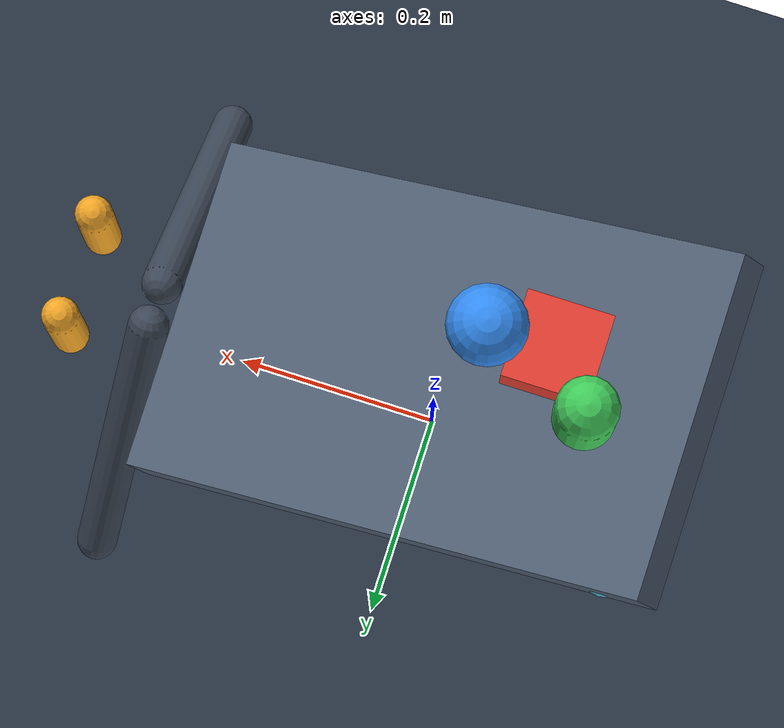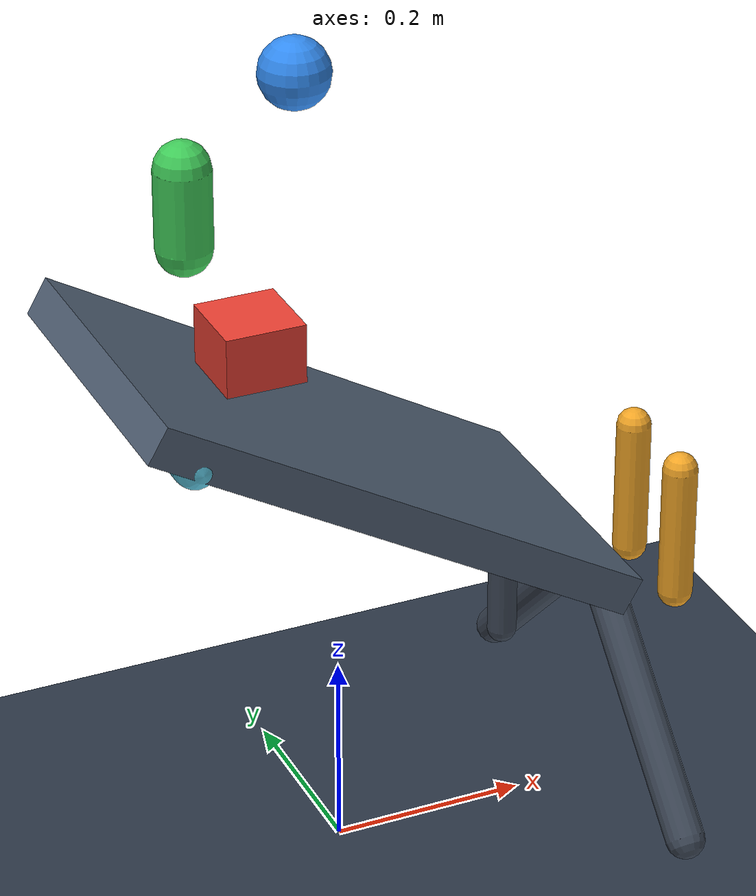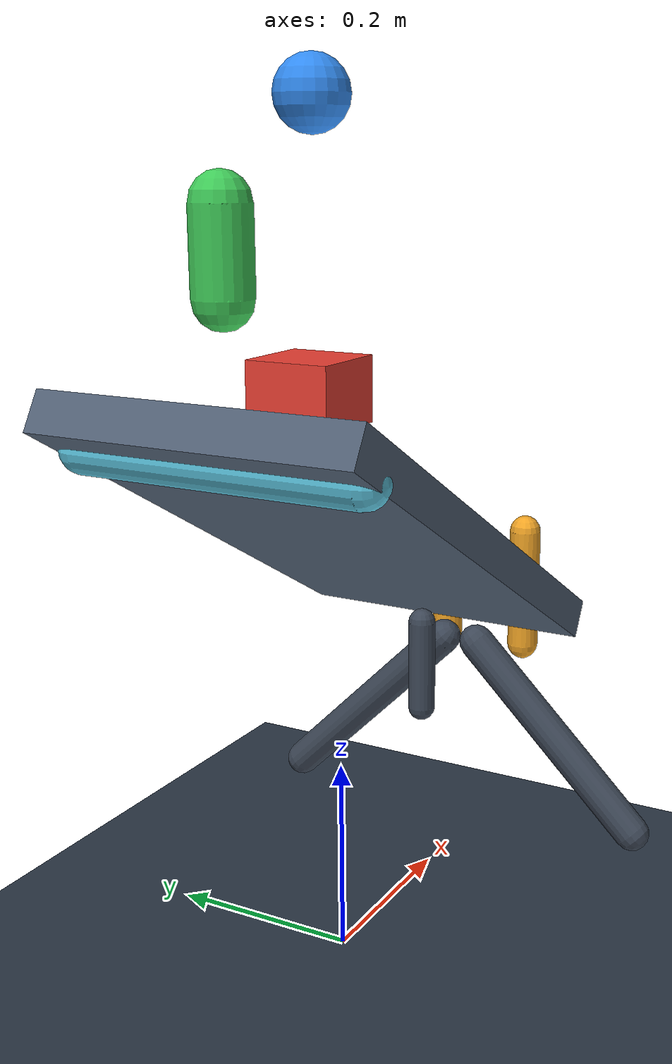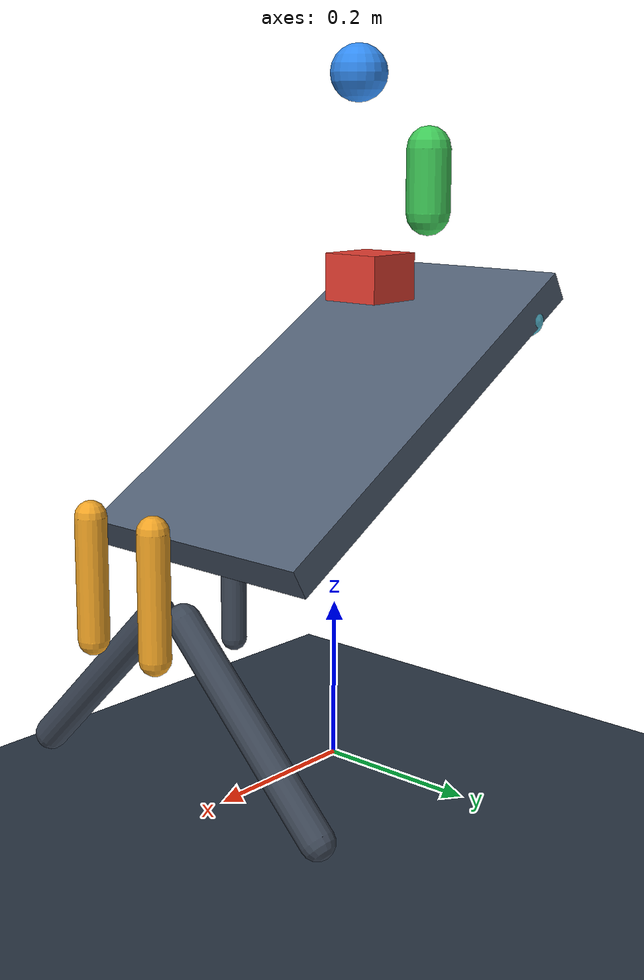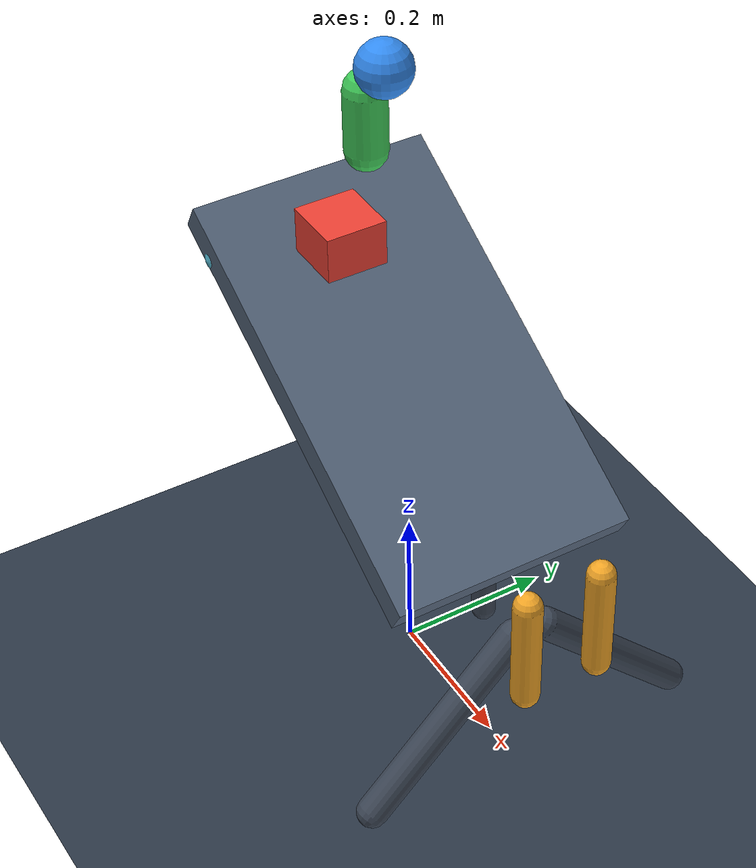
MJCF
<mujoco model="clockwork_parcel_sorter">
  <compiler angle="radian" inertiafromgeom="true"/>
  <option timestep="0.002" gravity="0 0 -9.81" integrator="Euler" iterations="800" tolerance="1e-5" density="1.2" viscosity="0.00002">
    <flag contact="enable" equality="enable" limit="enable" frictionloss="enable"/>
  </option>

  <asset>
    <texture name="checker" type="2d" builtin="checker" width="512" height="512"
      rgb1="0.12 0.15 0.20" rgb2="0.22 0.28 0.35"/>
    <material name="floor_mat" texture="checker" texrepeat="8 8" reflectance="0.1"/>
    <material name="ramp_mat" rgba="0.32 0.38 0.46 1" specular="0.6" shininess="0.4"/>
    <material name="chute_mat" rgba="0.24 0.28 0.34 1" specular="0.5" shininess="0.3"/>
    <material name="diverter_mat" rgba="0.95 0.65 0.15 1" specular="0.8" shininess="0.6"/>
    <material name="roller_mat" rgba="0.35 0.75 0.85 1" specular="0.8" shininess="0.7"/>
    <material name="box_parcel_mat" rgba="0.92 0.25 0.20 1" specular="0.8" shininess="0.8"/>
    <material name="cap_parcel_mat" rgba="0.25 0.80 0.35 1" specular="0.8" shininess="0.8"/>
    <material name="sph_parcel_mat" rgba="0.20 0.55 0.95 1" specular="0.9" shininess="0.9"/>
  </asset>

  <default>
    <geom condim="3" friction="0.35 0.05 0.05" solref="0.015 1.0" solimp="0.9 0.95 0.001 0.5 2"/>
  </default>

  <worldbody>
    <light directional="true" pos="0 -2 5" dir="0 0.3 -1" diffuse="0.9 0.9 0.9" specular="0.3 0.3 0.3"/>

    <!-- Foundation Table / Catch Floor -->
    <geom name="floor" type="plane" size="3 3 0.1" pos="0 0 -0.1" material="floor_mat" contype="0" conaffinity="0"/>

    <!-- Incline Solid Box Feed Ramp -->
    <geom name="ramp" type="box" size="0.28 0.16 0.02" pos="0 0 0.45"
      quat="0.9659258 0 0.258819 0" material="ramp_mat" contype="0" conaffinity="0"/>

    <!-- Capsule Guide Rollers at the head of the ramp -->
    <geom name="roller" type="capsule" size="0.022 0.14" pos="-0.20 0 0.55"
      quat="0.7071068 0.7071068 0 0" material="roller_mat" contype="0" conaffinity="0"/>

    <!-- Actuated Hinged Diverter Gate (Swinging guide arm) -->
    <body name="diverter1" pos="0.28 -0.05 0.30">
      <joint name="diverter1_hinge" type="hinge" axis="0 0 1" range="-0.65 0.65" limited="true" frictionloss="0.02" damping="0.05"/>
      <geom name="diverter1_flap" type="capsule" size="0.018 0.07" pos="0.07 0 0" material="diverter_mat" mass="0.2" contype="0" conaffinity="0"/>
    </body>

    <!-- Linked Follower Guide Flap (Symmetrically linked by joint equality) -->
    <body name="diverter2" pos="0.28 0.05 0.30">
      <joint name="diverter2_hinge" type="hinge" axis="0 0 1" range="-0.65 0.65" limited="true" frictionloss="0.02" damping="0.05"/>
      <geom name="diverter2_flap" type="capsule" size="0.018 0.07" pos="0.07 0 0" material="diverter_mat" mass="0.2" contype="0" conaffinity="0"/>
    </body>

    <!-- Diverter Damper lever -->
    <body name="damper_lever" pos="0.18 0 0.25">
      <joint name="damper_hinge" type="hinge" axis="0 0 1" range="-0.5 0.5" limited="true" stiffness="15.0" damping="0.2" springref="0.0"/>
      <geom name="damper_body" type="capsule" size="0.015 0.05" pos="0 0 0" material="chute_mat" contype="0" conaffinity="0" mass="0.1"/>
    </body>

    <!-- Left Chute / Guide Rail (Negative Y) -->
    <geom name="chute_left" type="capsule" size="0.02 0.14" pos="0.28 -0.12 0.15"
      quat="0.9238795 -0.3826834 0 0" material="chute_mat" contype="0" conaffinity="0"/>

    <!-- Right Chute / Guide Rail (Positive Y) -->
    <geom name="chute_right" type="capsule" size="0.02 0.14" pos="0.28 0.12 0.15"
      quat="0.9238795 0.3826834 0 0" material="chute_mat" contype="0" conaffinity="0"/>

    <!-- Mixed Parcel Feed -->
    <!-- Parcel 1: Red Box Parcel -->
    <body name="parcel_box" pos="-0.10 -0.03 0.60">
      <freejoint name="parcel_box_free"/>
      <geom name="box_parcel_geom" type="box" size="0.04 0.04 0.03" mass="0.4"
        material="box_parcel_mat" friction="0.35 0.05 0.05" contype="0" conaffinity="0"/>
    </body>

    <!-- Parcel 2: Green Capsule Parcel -->
    <body name="parcel_cap" pos="-0.14 0.03 0.72">
      <freejoint name="parcel_cap_free"/>
      <geom name="cap_parcel_geom" type="capsule" size="0.028 0.04" mass="0.3"
        material="cap_parcel_mat" friction="0.30 0.05 0.05" contype="0" conaffinity="0"/>
    </body>

    <!-- Parcel 3: Blue Sphere Parcel -->
    <body name="parcel_sph" pos="-0.04 0.0 0.85">
      <freejoint name="parcel_sph_free"/>
      <geom name="sph_parcel_geom" type="sphere" size="0.035" mass="0.25"
        material="sph_parcel_mat" friction="0.25 0.05 0.05" contype="0" conaffinity="0"/>
    </body>
  </worldbody>

  <contact>
    <!-- Explicit candidate pairs with mixed condim=3 and condim=1 -->
    <!-- Parcel 1 (Box) contacts: ramp (box-box manifold), diverter (box-capsule), chute_left (box-capsule) -->
    <pair geom1="box_parcel_geom" geom2="ramp" condim="3" friction="0.35 0.35 0.01"/>
    <pair geom1="box_parcel_geom" geom2="diverter1_flap" condim="1"/>
    <pair geom1="box_parcel_geom" geom2="chute_left" condim="1"/>

    <!-- Parcel 2 (Capsule) contacts: ramp (capsule-box), diverter2 (capsule-capsule), chute_right -->
    <pair geom1="cap_parcel_geom" geom2="ramp" condim="3" friction="0.30 0.30 0.01"/>
    <pair geom1="cap_parcel_geom" geom2="diverter2_flap" condim="1"/>
    <pair geom1="cap_parcel_geom" geom2="chute_right" condim="1"/>

    <!-- Parcel 3 (Sphere) contacts: ramp (sphere-box), roller (sphere-capsule), floor (sphere-plane) -->
    <pair geom1="sph_parcel_geom" geom2="ramp" condim="3" friction="0.25 0.25 0.01"/>
    <pair geom1="sph_parcel_geom" geom2="roller" condim="1"/>
    <pair geom1="sph_parcel_geom" geom2="floor" condim="1"/>

    <!-- Parcel-to-parcel physical interaction -->
    <pair geom1="box_parcel_geom" geom2="cap_parcel_geom" condim="1"/>
  </contact>

  <equality>
    <!-- Counter-rotating diverter gates linked by joint equality -->
    <joint joint1="diverter2_hinge" joint2="diverter1_hinge" polycoef="0 1.0 0 0 0"/>
  </equality>

  <tendon>
    <!-- Fixed tendon coupling diverter to damper lever -->
    <fixed name="diverter_tendon" stiffness="6.0" damping="0.1" armature="0.005">
      <joint joint="diverter1_hinge" coef="0.5"/>
      <joint joint="damper_hinge" coef="0.4"/>
    </fixed>
  </tendon>

  <actuator>
    <!-- Actuator switching the diverter between left and right sorting paths -->
    <motor name="diverter_motor" joint="diverter1_hinge" ctrlrange="-1.5 1.5"/>
  </actuator>

  <sensor>
    <jointpos joint="diverter1_hinge" name="diverter_angle"/>
    <jointvel joint="diverter1_hinge" name="diverter_vel"/>
    <jointpos joint="diverter2_hinge" name="diverter2_angle"/>
    <jointpos joint="damper_hinge" name="damper_angle"/>
  </sensor>
</mujoco>
